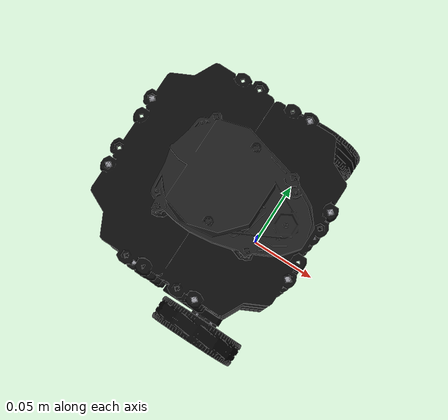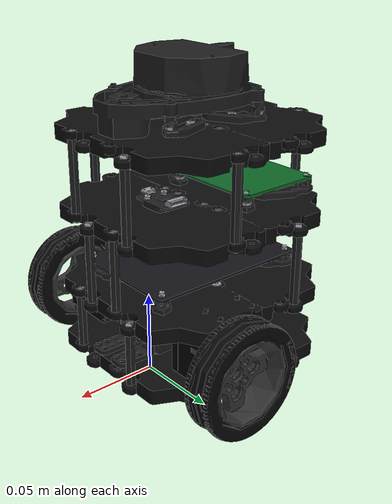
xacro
<?xml version="1.0" ?>
<robot name="turtlebot3_burger"
  xmlns:xacro="http://ros.org/wiki/xacro">

  <xacro:arg name="camera" default="false"/>
  <xacro:arg name="noise_level" default="none"/>
  <xacro:arg name="namespace" default="turtlebot3"/>
  <xacro:property name="noise_level" value="$(arg noise_level)"/>
  <xacro:property name="namespace" value="$(arg namespace)"/>

  <xacro:include filename="$(find custom_robots)/models/turtlebot3/turtlebot3_burger_common.urdf.xacro"/>

  <xacro:turtlebot3_burger namespace="${namespace}"/>

  <xacro:if value="$(arg camera)">
    <xacro:burger_camera namespace="${namespace}"/>
  </xacro:if>

  <!-- Odometry noise per difficulty (drift std ~ alpha*sqrt(distance)). -->
  <xacro:if value="${noise_level == 'low'}">
    <xacro:burger_noise_odom namespace="${namespace}" alpha="0.01"/>
  </xacro:if>

  <xacro:if value="${noise_level == 'med'}">
    <xacro:burger_noise_odom namespace="${namespace}" alpha="0.05"/>
  </xacro:if>

  <xacro:if value="${noise_level == 'high'}">
    <xacro:burger_noise_odom namespace="${namespace}" alpha="0.25"/>
  </xacro:if>
</robot>

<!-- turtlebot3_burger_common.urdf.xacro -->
<robot xmlns:xacro="http://ros.org/wiki/xacro">
  <xacro:include filename="$(find custom_robots)/models/turtlebot3/turtlebot3_burger_gz.urdf.xacro"/>

  <xacro:property name="burger_meshes" value="file://$(find custom_robots)/models/turtlebot3/meshes/burger"/>

  <!-- The ROBOTIS meshes are split by material so each part gets the color of the real robot -->
  <xacro:macro name="burger_part" params="mesh material xyz:='0 0 0' rpy:='0 0 0'">
    <visual>
      <origin xyz="${xyz}" rpy="${rpy}"/>
      <geometry>
        <mesh filename="${burger_meshes}/${mesh}.stl" scale="0.001 0.001 0.001"/>
      </geometry>
      <material name="${material}"/>
    </visual>
  </xacro:macro>

  <!-- Geometry and inertia from ROBOTIS turtlebot3_description -->
  <xacro:macro name="turtlebot3_burger" params="namespace">
    <material name="burger_plate">
      <color rgba="0.05 0.05 0.05 1.0"/>
    </material>
    <material name="burger_plastic">
      <color rgba="0.12 0.12 0.12 1.0"/>
    </material>
    <material name="burger_dynamixel">
      <color rgba="0.02 0.02 0.02 1.0"/>
    </material>
    <material name="burger_metal">
      <color rgba="0.62 0.62 0.65 1.0"/>
    </material>
    <material name="burger_rpi">
      <color rgba="0.05 0.40 0.15 1.0"/>
    </material>
    <material name="burger_opencr">
      <color rgba="0.08 0.08 0.10 1.0"/>
    </material>
    <material name="burger_rubber">
      <color rgba="0.03 0.03 0.03 1.0"/>
    </material>
    <material name="burger_rim">
      <color rgba="0.20 0.20 0.20 1.0"/>
    </material>

    <link name="base_footprint"/>

    <joint name="base_joint" type="fixed">
      <parent link="base_footprint"/>
      <child link="base_link"/>
      <origin xyz="0 0 0.010" rpy="0 0 0"/>
    </joint>

    <link name="base_link">
      <xacro:burger_part mesh="burger_base_plates" material="burger_plate" xyz="-0.032 0 0"/>
      <xacro:burger_part mesh="burger_base_plastic" material="burger_plastic" xyz="-0.032 0 0"/>
      <xacro:burger_part mesh="burger_base_motors" material="burger_dynamixel" xyz="-0.032 0 0"/>
      <xacro:burger_part mesh="burger_base_metal" material="burger_metal" xyz="-0.032 0 0"/>
      <xacro:burger_part mesh="burger_base_rpi" material="burger_rpi" xyz="-0.032 0 0"/>
      <xacro:burger_part mesh="burger_base_opencr" material="burger_opencr" xyz="-0.032 0 0"/>
      <collision>
        <origin xyz="-0.032 0 0.070" rpy="0 0 0"/>
        <geometry>
          <box size="0.140 0.140 0.143"/>
        </geometry>
      </collision>
      <inertial>
        <origin xyz="0 0 0" rpy="0 0 0"/>
        <mass value="8.2573504e-01"/>
        <inertia ixx="2.2124416e-03" ixy="-1.2294101e-05" ixz="3.4938785e-05" iyy="2.1193702e-03" iyz="-5.0120904e-06" izz="2.0064271e-03"/>
      </inertial>
    </link>

    <xacro:burger_wheel side="left" y="0.080"/>
    <xacro:burger_wheel side="right" y="-0.080"/>

    <joint name="caster_back_joint" type="fixed">
      <parent link="base_link"/>
      <child link="caster_back_link"/>
      <origin xyz="-0.081 0 -0.004" rpy="0 0 0"/>
    </joint>

    <link name="caster_back_link">
      <collision>
        <geometry>
          <sphere radius="0.006"/>
        </geometry>
      </collision>
      <inertial>
        <mass value="0.005"/>
        <inertia ixx="1e-5" ixy="0" ixz="0" iyy="1e-5" iyz="0" izz="1e-5"/>
      </inertial>
    </link>

    <!-- The ball caster slides freely so it does not brake the turns -->
    <gazebo reference="caster_back_link">
      <mu1>0.0</mu1>
      <mu2>0.0</mu2>
    </gazebo>

    <joint name="imu_joint" type="fixed">
      <parent link="base_link"/>
      <child link="imu_link"/>
      <origin xyz="-0.032 0 0.068" rpy="0 0 0"/>
    </joint>

    <link name="imu_link"/>

    <joint name="scan_joint" type="fixed">
      <parent link="base_link"/>
      <child link="base_scan"/>
      <origin xyz="-0.032 0 0.172" rpy="0 0 0"/>
    </joint>

    <link name="base_scan">
      <xacro:burger_part mesh="lds_body" material="burger_plastic"/>
      <xacro:burger_part mesh="lds_metal" material="burger_metal"/>
      <collision>
        <origin xyz="0.015 0 -0.0065" rpy="0 0 0"/>
        <geometry>
          <cylinder length="0.0315" radius="0.055"/>
        </geometry>
      </collision>
      <inertial>
        <mass value="0.114"/>
        <inertia ixx="0.001" ixy="0" ixz="0" iyy="0.001" iyz="0" izz="0.001"/>
      </inertial>
    </link>

    <xacro:burger_lds namespace="${namespace}"/>
    <xacro:burger_imu namespace="${namespace}"/>
    <xacro:burger_drive namespace="${namespace}"/>
  </xacro:macro>

  <xacro:macro name="burger_wheel" params="side y">
    <joint name="wheel_${side}_joint" type="continuous">
      <parent link="base_link"/>
      <child link="wheel_${side}_link"/>
      <origin xyz="0 ${y} 0.023" rpy="-1.57 0 0"/>
      <axis xyz="0 0 1"/>
      <limit effort="20" velocity="100"/>
    </joint>

    <link name="wheel_${side}_link">
      <xacro:burger_part mesh="${side}_tire_rubber" material="burger_rubber" rpy="1.57 0 0"/>
      <xacro:burger_part mesh="${side}_tire_rim" material="burger_rim" rpy="1.57 0 0"/>
      <collision>
        <geometry>
          <cylinder length="0.018" radius="0.033"/>
        </geometry>
      </collision>
      <inertial>
        <mass value="2.8498940e-02"/>
        <inertia ixx="1.1175580e-05" ixy="-4.2369783e-11" ixz="-5.9381719e-09" iyy="1.1192413e-05" iyz="-1.4400107e-11" izz="2.0712558e-05"/>
      </inertial>
    </link>
  </xacro:macro>
</robot>
